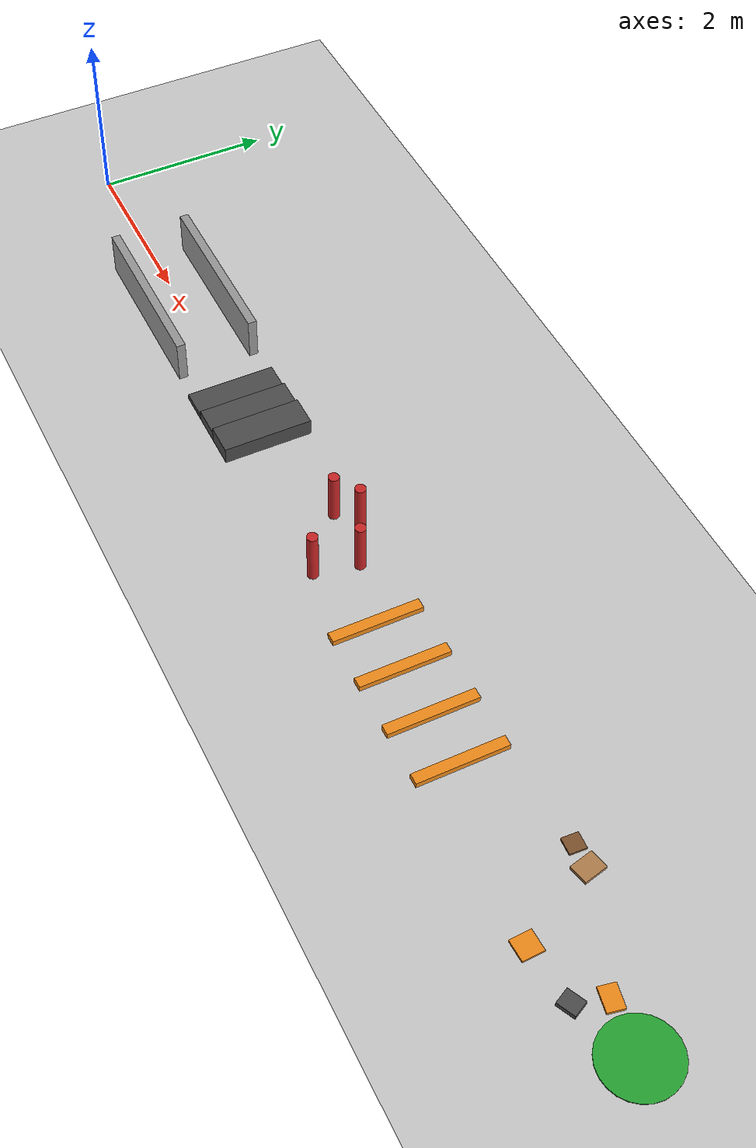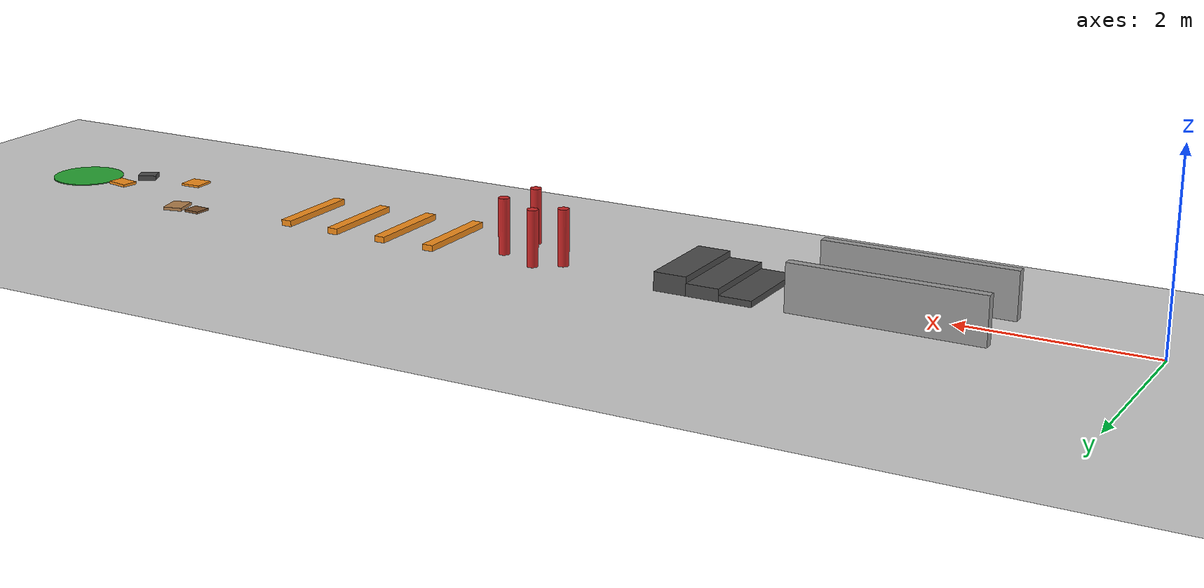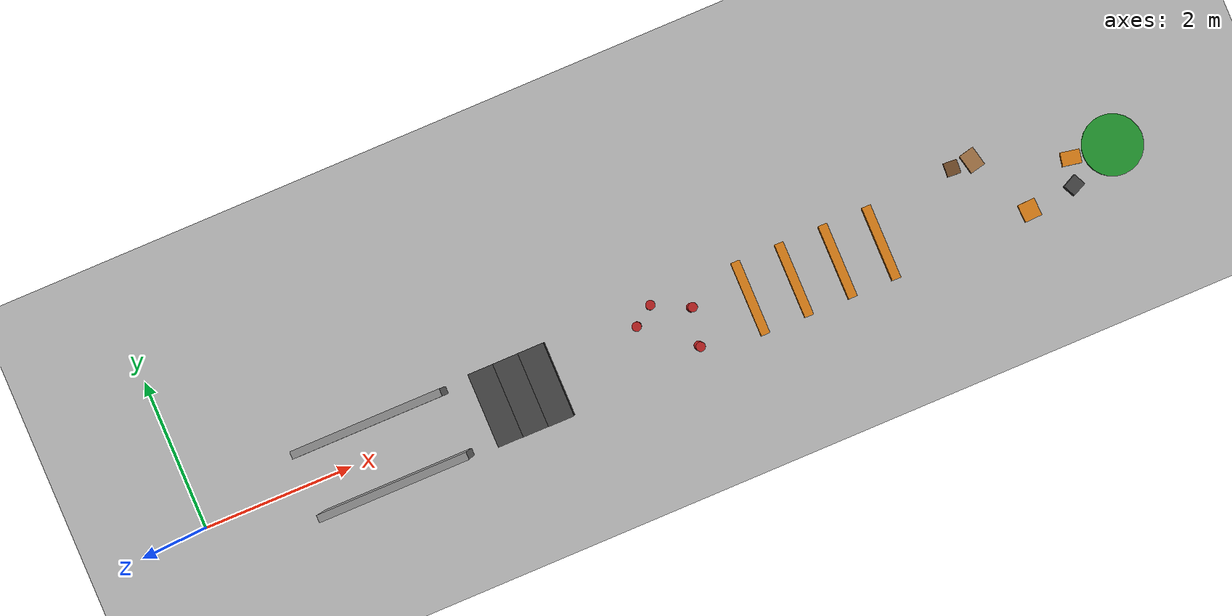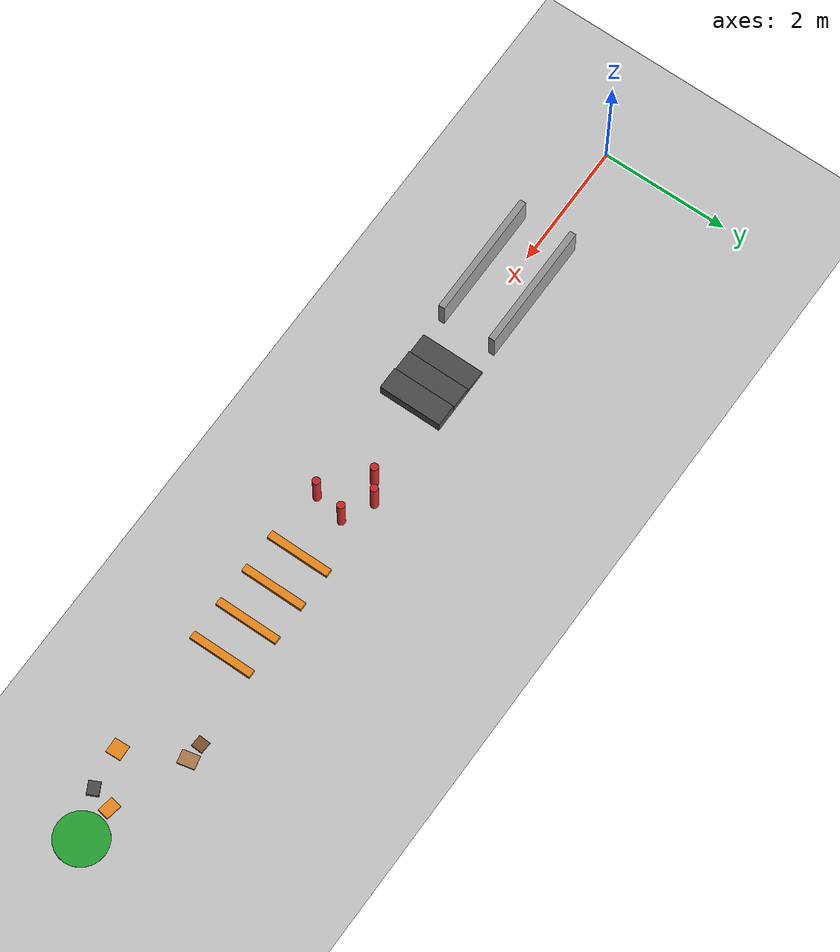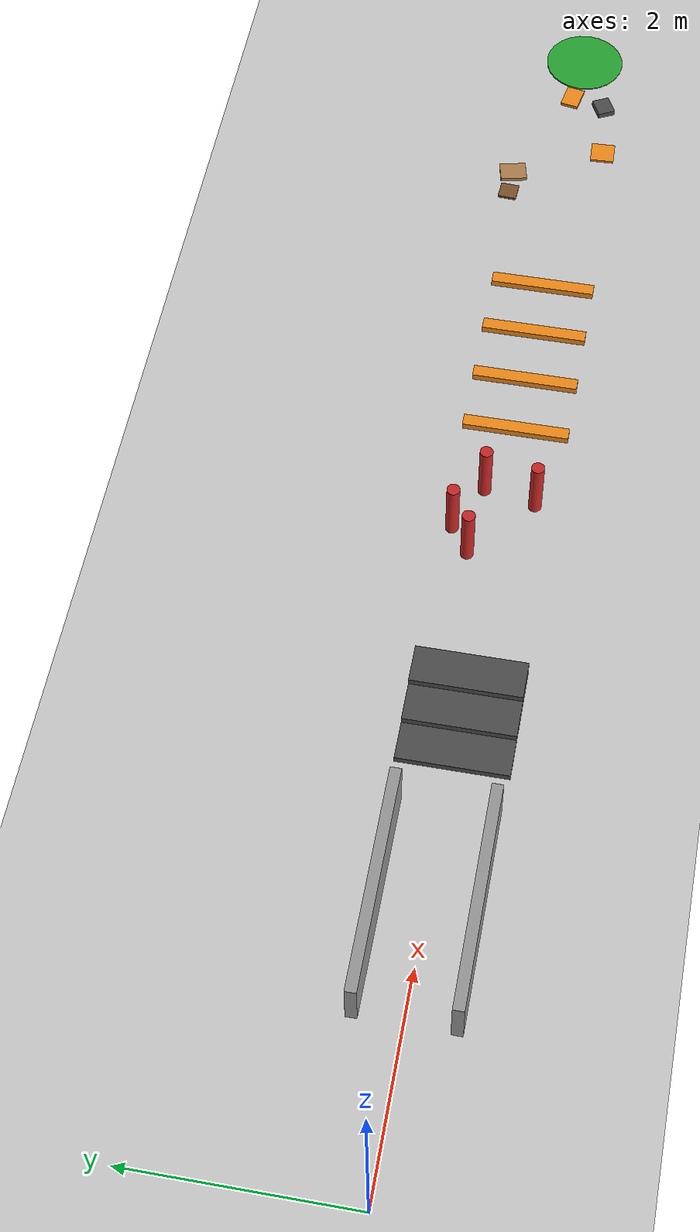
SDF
<?xml version="1.0" ?>
<!-- 由 omni_world.py 自动生成: scene=mixed seed=5 -->
<sdf version="1.5">
  <world name="mixed">
    <physics type="ode">
      <type>world</type>
      <max_step_size>0.001</max_step_size>
      <real_time_update_rate>1000</real_time_update_rate>
      <iters>500</iters>
    </physics>
    <include><uri>model://sun</uri></include>
    <include><uri>model://ground_plane</uri></include>
    <model name="mx_wl_0">
      <static>true</static>
      <pose>2.500 0.425 0.250 0.0000 0.0000 0.0000</pose>
      <link name="link">
        <collision name="collision">
          <geometry><box><size>2.000 0.100 0.500</size></box></geometry>
          <surface><friction><ode><mu>1.0</mu><mu2>1.0</mu2></ode></friction></surface>
        </collision>
        <visual name="visual">
          <geometry><box><size>2.000 0.100 0.500</size></box></geometry>
          <material><script><uri>file://media/materials/scripts/gazebo.material</uri>
            <name>Gazebo/Grey</name></script></material>
        </visual>
      </link>
    </model>
    <model name="mx_wr_0">
      <static>true</static>
      <pose>2.500 -0.425 0.250 0.0000 0.0000 0.0000</pose>
      <link name="link">
        <collision name="collision">
          <geometry><box><size>2.000 0.100 0.500</size></box></geometry>
          <surface><friction><ode><mu>1.0</mu><mu2>1.0</mu2></ode></friction></surface>
        </collision>
        <visual name="visual">
          <geometry><box><size>2.000 0.100 0.500</size></box></geometry>
          <material><script><uri>file://media/materials/scripts/gazebo.material</uri>
            <name>Gazebo/Grey</name></script></material>
        </visual>
      </link>
    </model>
    <model name="mx_step_1_0">
      <static>true</static>
      <pose>4.000 0.000 0.033 0.0000 0.0000 0.0000</pose>
      <link name="link">
        <collision name="collision">
          <geometry><box><size>0.350 1.000 0.065</size></box></geometry>
          <surface><friction><ode><mu>1.0</mu><mu2>1.0</mu2></ode></friction></surface>
        </collision>
        <visual name="visual">
          <geometry><box><size>0.350 1.000 0.065</size></box></geometry>
          <material><script><uri>file://media/materials/scripts/gazebo.material</uri>
            <name>Gazebo/DarkGrey</name></script></material>
        </visual>
      </link>
    </model>
    <model name="mx_step_1_1">
      <static>true</static>
      <pose>4.350 0.000 0.065 0.0000 0.0000 0.0000</pose>
      <link name="link">
        <collision name="collision">
          <geometry><box><size>0.350 1.000 0.130</size></box></geometry>
          <surface><friction><ode><mu>1.0</mu><mu2>1.0</mu2></ode></friction></surface>
        </collision>
        <visual name="visual">
          <geometry><box><size>0.350 1.000 0.130</size></box></geometry>
          <material><script><uri>file://media/materials/scripts/gazebo.material</uri>
            <name>Gazebo/DarkGrey</name></script></material>
        </visual>
      </link>
    </model>
    <model name="mx_step_1_2">
      <static>true</static>
      <pose>4.700 0.000 0.098 0.0000 0.0000 0.0000</pose>
      <link name="link">
        <collision name="collision">
          <geometry><box><size>0.350 1.000 0.195</size></box></geometry>
          <surface><friction><ode><mu>1.0</mu><mu2>1.0</mu2></ode></friction></surface>
        </collision>
        <visual name="visual">
          <geometry><box><size>0.350 1.000 0.195</size></box></geometry>
          <material><script><uri>file://media/materials/scripts/gazebo.material</uri>
            <name>Gazebo/DarkGrey</name></script></material>
        </visual>
      </link>
    </model>
    <model name="mx_pole_2_0">
      <static>true</static>
      <pose>6.038 0.229 0.300 0 0 0</pose>
      <link name="link">
        <collision name="collision">
          <geometry><cylinder><radius>0.060</radius><length>0.600</length></cylinder></geometry>
          <surface><friction><ode><mu>1.0</mu><mu2>1.0</mu2></ode></friction></surface>
        </collision>
        <visual name="visual">
          <geometry><cylinder><radius>0.060</radius><length>0.600</length></cylinder></geometry>
          <material><script><uri>file://media/materials/scripts/gazebo.material</uri>
            <name>Gazebo/Red</name></script></material>
        </visual>
      </link>
    </model>
    <model name="mx_pole_2_1">
      <static>true</static>
      <pose>6.762 0.182 0.300 0 0 0</pose>
      <link name="link">
        <collision name="collision">
          <geometry><cylinder><radius>0.060</radius><length>0.600</length></cylinder></geometry>
          <surface><friction><ode><mu>1.0</mu><mu2>1.0</mu2></ode></friction></surface>
        </collision>
        <visual name="visual">
          <geometry><cylinder><radius>0.060</radius><length>0.600</length></cylinder></geometry>
          <material><script><uri>file://media/materials/scripts/gazebo.material</uri>
            <name>Gazebo/Red</name></script></material>
        </visual>
      </link>
    </model>
    <model name="mx_pole_2_2">
      <static>true</static>
      <pose>6.295 0.408 0.300 0 0 0</pose>
      <link name="link">
        <collision name="collision">
          <geometry><cylinder><radius>0.060</radius><length>0.600</length></cylinder></geometry>
          <surface><friction><ode><mu>1.0</mu><mu2>1.0</mu2></ode></friction></surface>
        </collision>
        <visual name="visual">
          <geometry><cylinder><radius>0.060</radius><length>0.600</length></cylinder></geometry>
          <material><script><uri>file://media/materials/scripts/gazebo.material</uri>
            <name>Gazebo/Red</name></script></material>
        </visual>
      </link>
    </model>
    <model name="mx_pole_2_3">
      <static>true</static>
      <pose>6.664 -0.301 0.300 0 0 0</pose>
      <link name="link">
        <collision name="collision">
          <geometry><cylinder><radius>0.060</radius><length>0.600</length></cylinder></geometry>
          <surface><friction><ode><mu>1.0</mu><mu2>1.0</mu2></ode></friction></surface>
        </collision>
        <visual name="visual">
          <geometry><cylinder><radius>0.060</radius><length>0.600</length></cylinder></geometry>
          <material><script><uri>file://media/materials/scripts/gazebo.material</uri>
            <name>Gazebo/Red</name></script></material>
        </visual>
      </link>
    </model>
    <model name="mx_bump_3_0">
      <static>true</static>
      <pose>7.500 0.000 0.033 0.0000 0.0000 0.0000</pose>
      <link name="link">
        <collision name="collision">
          <geometry><box><size>0.120 1.000 0.065</size></box></geometry>
          <surface><friction><ode><mu>1.0</mu><mu2>1.0</mu2></ode></friction></surface>
        </collision>
        <visual name="visual">
          <geometry><box><size>0.120 1.000 0.065</size></box></geometry>
          <material><script><uri>file://media/materials/scripts/gazebo.material</uri>
            <name>Gazebo/Orange</name></script></material>
        </visual>
      </link>
    </model>
    <model name="mx_bump_3_1">
      <static>true</static>
      <pose>8.100 0.000 0.033 0.0000 0.0000 0.0000</pose>
      <link name="link">
        <collision name="collision">
          <geometry><box><size>0.120 1.000 0.065</size></box></geometry>
          <surface><friction><ode><mu>1.0</mu><mu2>1.0</mu2></ode></friction></surface>
        </collision>
        <visual name="visual">
          <geometry><box><size>0.120 1.000 0.065</size></box></geometry>
          <material><script><uri>file://media/materials/scripts/gazebo.material</uri>
            <name>Gazebo/Orange</name></script></material>
        </visual>
      </link>
    </model>
    <model name="mx_bump_3_2">
      <static>true</static>
      <pose>8.700 0.000 0.033 0.0000 0.0000 0.0000</pose>
      <link name="link">
        <collision name="collision">
          <geometry><box><size>0.120 1.000 0.065</size></box></geometry>
          <surface><friction><ode><mu>1.0</mu><mu2>1.0</mu2></ode></friction></surface>
        </collision>
        <visual name="visual">
          <geometry><box><size>0.120 1.000 0.065</size></box></geometry>
          <material><script><uri>file://media/materials/scripts/gazebo.material</uri>
            <name>Gazebo/Orange</name></script></material>
        </visual>
      </link>
    </model>
    <model name="mx_bump_3_3">
      <static>true</static>
      <pose>9.300 0.000 0.033 0.0000 0.0000 0.0000</pose>
      <link name="link">
        <collision name="collision">
          <geometry><box><size>0.120 1.000 0.065</size></box></geometry>
          <surface><friction><ode><mu>1.0</mu><mu2>1.0</mu2></ode></friction></surface>
        </collision>
        <visual name="visual">
          <geometry><box><size>0.120 1.000 0.065</size></box></geometry>
          <material><script><uri>file://media/materials/scripts/gazebo.material</uri>
            <name>Gazebo/Orange</name></script></material>
        </visual>
      </link>
    </model>
    <model name="mx_rough_4_0">
      <static>true</static>
      <pose>11.204 -0.355 0.012 0.0000 0.0000 0.0412</pose>
      <link name="link">
        <collision name="collision">
          <geometry><box><size>0.232 0.236 0.024</size></box></geometry>
          <surface><friction><ode><mu>1.0</mu><mu2>1.0</mu2></ode></friction></surface>
        </collision>
        <visual name="visual">
          <geometry><box><size>0.232 0.236 0.024</size></box></geometry>
          <material><script><uri>file://media/materials/scripts/gazebo.material</uri>
            <name>Gazebo/Orange</name></script></material>
        </visual>
      </link>
    </model>
    <model name="mx_rough_4_1">
      <static>true</static>
      <pose>10.773 0.514 0.017 0.0000 0.0000 0.2260</pose>
      <link name="link">
        <collision name="collision">
          <geometry><box><size>0.208 0.264 0.034</size></box></geometry>
          <surface><friction><ode><mu>1.0</mu><mu2>1.0</mu2></ode></friction></surface>
        </collision>
        <visual name="visual">
          <geometry><box><size>0.208 0.264 0.034</size></box></geometry>
          <material><script><uri>file://media/materials/scripts/gazebo.material</uri>
            <name>Gazebo/Wood</name></script></material>
        </visual>
      </link>
    </model>
    <model name="mx_rough_4_2">
      <static>true</static>
      <pose>10.503 0.520 0.012 0.0000 0.0000 3.0864</pose>
      <link name="link">
        <collision name="collision">
          <geometry><box><size>0.181 0.182 0.024</size></box></geometry>
          <surface><friction><ode><mu>1.0</mu><mu2>1.0</mu2></ode></friction></surface>
        </collision>
        <visual name="visual">
          <geometry><box><size>0.181 0.182 0.024</size></box></geometry>
          <material><script><uri>file://media/materials/scripts/gazebo.material</uri>
            <name>Gazebo/Brown</name></script></material>
        </visual>
      </link>
    </model>
    <model name="mx_rough_4_3">
      <static>true</static>
      <pose>11.942 0.055 0.015 0.0000 0.0000 2.9562</pose>
      <link name="link">
        <collision name="collision">
          <geometry><box><size>0.252 0.181 0.030</size></box></geometry>
          <surface><friction><ode><mu>1.0</mu><mu2>1.0</mu2></ode></friction></surface>
        </collision>
        <visual name="visual">
          <geometry><box><size>0.252 0.181 0.030</size></box></geometry>
          <material><script><uri>file://media/materials/scripts/gazebo.material</uri>
            <name>Gazebo/Orange</name></script></material>
        </visual>
      </link>
    </model>
    <model name="mx_rough_4_4">
      <static>true</static>
      <pose>11.841 -0.282 0.027 0.0000 0.0000 0.4577</pose>
      <link name="link">
        <collision name="collision">
          <geometry><box><size>0.204 0.175 0.054</size></box></geometry>
          <surface><friction><ode><mu>1.0</mu><mu2>1.0</mu2></ode></friction></surface>
        </collision>
        <visual name="visual">
          <geometry><box><size>0.204 0.175 0.054</size></box></geometry>
          <material><script><uri>file://media/materials/scripts/gazebo.material</uri>
            <name>Gazebo/DarkGrey</name></script></material>
        </visual>
      </link>
    </model>
    <model name="goal">
      <static>true</static>
      <pose>12.500 0.000 0.005 0 0 0</pose>
      <link name="link">
        <visual name="visual">
          <geometry><cylinder><radius>0.400</radius><length>0.01</length></cylinder></geometry>
          <material><script><uri>file://media/materials/scripts/gazebo.material</uri>
            <name>Gazebo/Green</name></script></material>
        </visual>
      </link>
    </model>

  </world>
</sdf>
